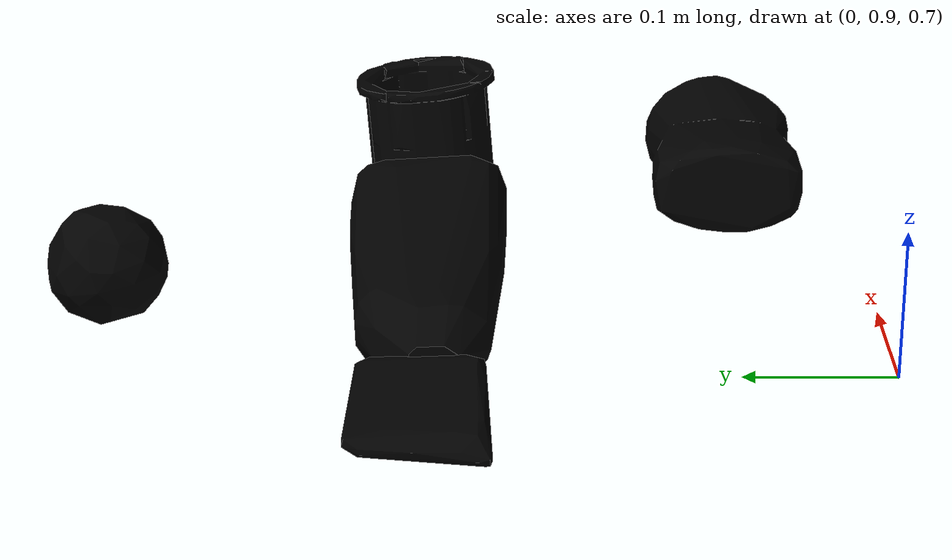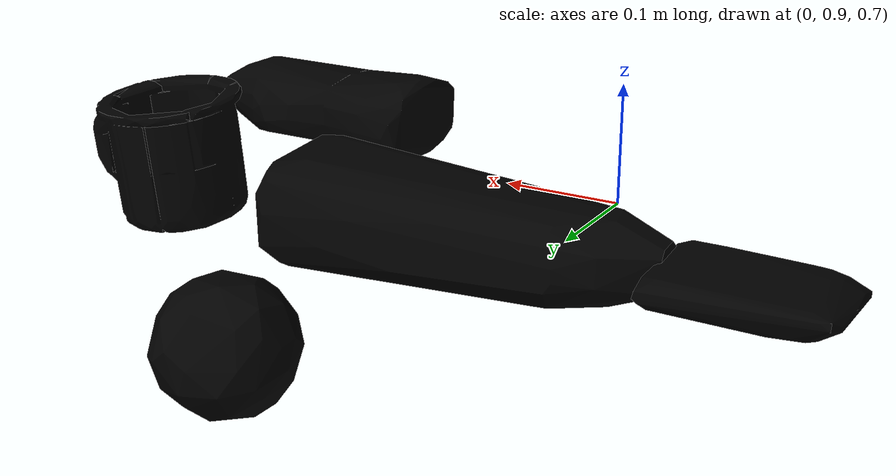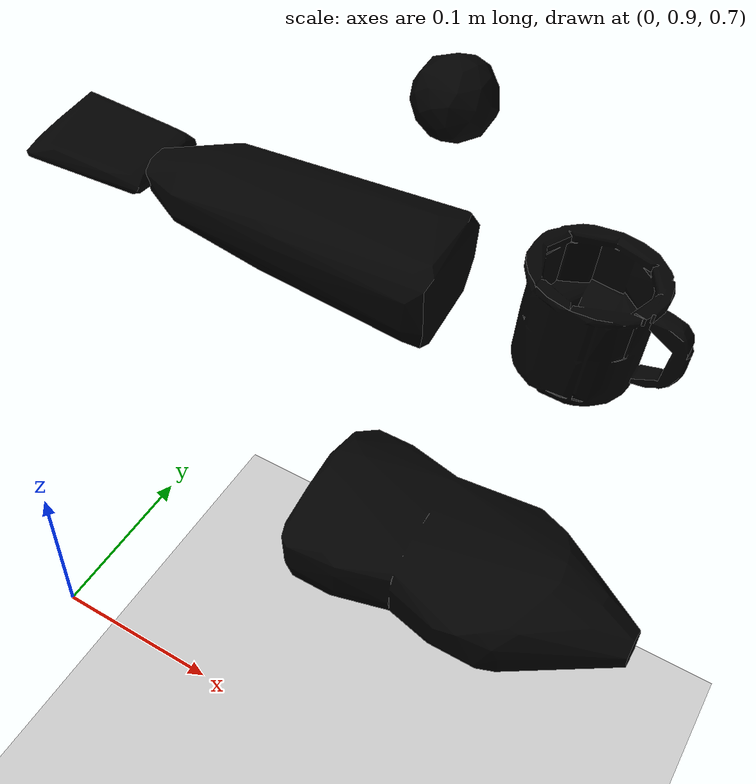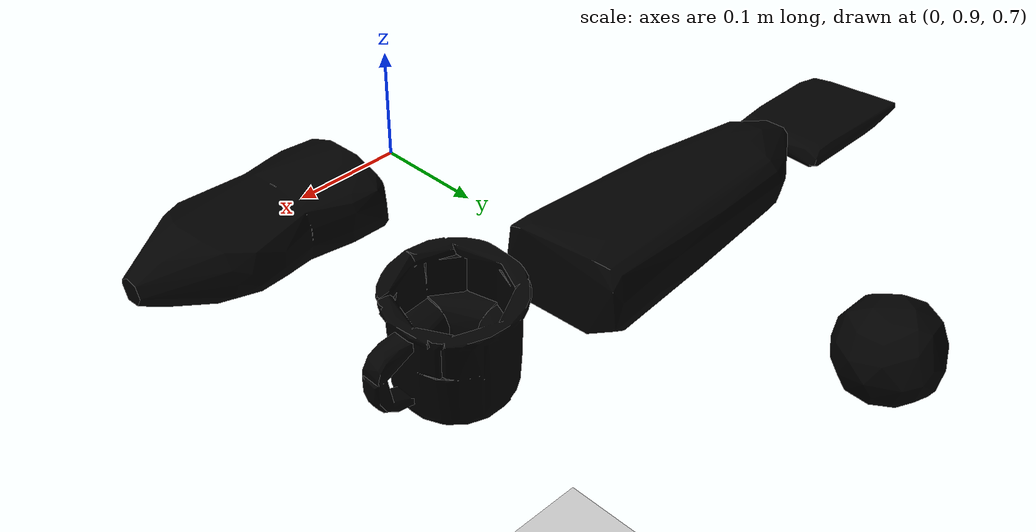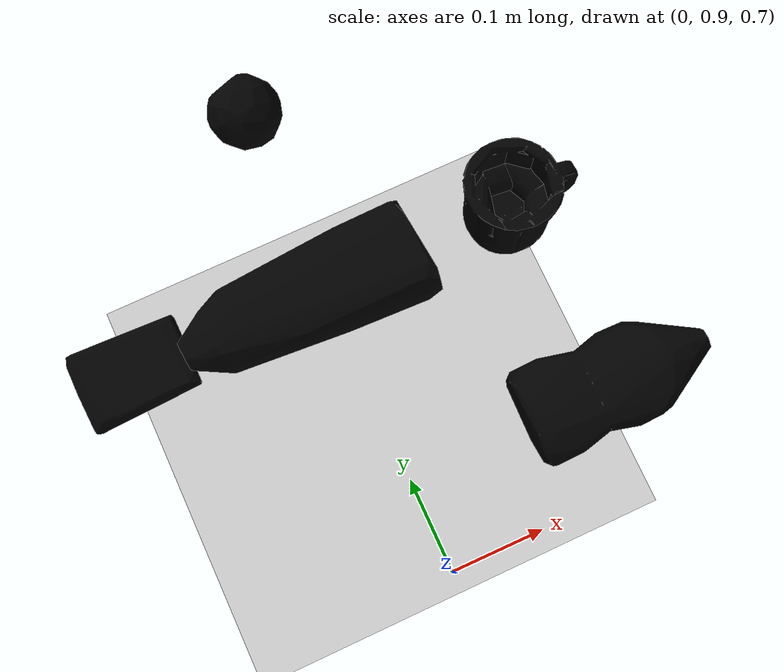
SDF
<gazebo version="1.0">
 <world name="default">
  <light name="sun" type="directional">
   <pose>0 0 10 0 -0 0</pose>
   <diffuse>0.8 0.8 0.8 1</diffuse>
   <specular>0.2 0.2 0.2 1</specular>
   <attenuation>
    <range>1000</range>
    <constant>0.9</constant>
    <linear>0.01</linear>
    <quadratic>0.001</quadratic>
   </attenuation>
   <direction>-0.5 0.1 -0.9</direction>
  </light>
  <model name="ground_plane">
   <static>1</static>
   <link name="link">
    <collision name="collision">
     <geometry><plane><normal>0 0 1</normal><size>100 100</size></plane></geometry>
     <surface><friction><ode><mu>100</mu><mu2>50</mu2></ode></friction></surface>
    </collision>
    <visual name="visual">
     <cast_shadows>0</cast_shadows>
     <geometry><plane><normal>0 0 1</normal><size>100 100</size></plane></geometry>
     <material>
      <script><uri>file://media/materials/scripts/gazebo.material</uri><name>Gazebo/Grey</name></script>
     </material>
    </visual>
    <velocity_decay><linear>0</linear><angular>0</angular></velocity_decay>
   </link>
  </model>
  <physics type="ode">
   <max_step_size>0.001</max_step_size>
   <real_time_factor>1</real_time_factor>
   <real_time_update_rate>1000</real_time_update_rate>
   <gravity>0 0 -9.8</gravity>
  </physics>
  <spherical_coordinates>
   <surface_model>EARTH_WGS84</surface_model>
   <latitude_deg>0</latitude_deg>
   <longitude_deg>0</longitude_deg>
   <elevation>0</elevation>
   <heading_deg>0</heading_deg>
  </spherical_coordinates>
  <include><uri>model://006_mustard_bottle_textured</uri><pose>0.2 1.0 0.778272 0 0 0</pose></include>
  <include><uri>model://021_bleach_cleanser_textured</uri><pose>0.0 1.2 0.778272 0 0 0</pose></include>
  <include><uri>model://025_mug_textured</uri><pose>0.2 1.2 0.778272 0 0 0</pose></include>
  <include><uri>model://026_sponge_textured</uri><pose>-0.2 1.2 0.778272 0 0 0</pose></include>
  <include><uri>model://017_orange_textured</uri><pose>0.0 1.4 0.778272 0 0 0</pose></include>
 </world>
</gazebo>

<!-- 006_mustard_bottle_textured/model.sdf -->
<sdf version="1.4">
  <model name="006_mustard_bottle_textured">
    <pose>0 0 0  0 0 0</pose>
    <link name="body">
      <inertial>
        <mass> 1.0 </mass>
        <pose>0 0 0 0 0 0</pose>
        <inertia>
          <ixx>0.0007014092721457655</ixx>
          <ixy>0.0</ixy>
          <ixz>0.0</ixz>
          <iyy>0.0023772974006212805</iyy>
          <iyz>0.0</iyz>
          <izz>0.0027281266896929538</izz>
        </inertia>
      </inertial>
      <visual name="visual">
        <geometry>
          <mesh>
            <uri>model://006_mustard_bottle_textured/textured.dae</uri>
          </mesh>
        </geometry>
        <pose>-0.07484429837772107 -0.005002967007784245 -0.02766453523030315 -1.5633073492400062 0.3999830453240471 -1.56606276659488</pose>
      </visual>
      <collision name="collision">
        <geometry>
          <mesh>
            <uri>model://006_mustard_bottle_textured/textured.col.dae</uri>
          </mesh>
        </geometry>
        <max_contacts>10</max_contacts>
        <surface>
          <friction>
            <ode>
              <mu>0.8</mu>
              <mu2>0.8</mu2>
              <slip1>0</slip1>
              <slip2>0</slip2>
            </ode>
            <torsional>
              <ode/>
            </torsional>
          </friction>
          <contact>
            <ode>
              <kp>1000000.0</kp>
              <kd>1.0</kd>
              <max_vel>0.0</max_vel>
            </ode>
          </contact>
        </surface>
        <pose>-0.07484429837772107 -0.005002967007784245 -0.02766453523030315 -1.5633073492400062 0.3999830453240471 -1.56606276659488</pose>
      </collision>
    </link>
  </model>
</sdf>

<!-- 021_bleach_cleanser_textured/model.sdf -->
<sdf version="1.4">
  <model name="021_bleach_cleanser_textured">
    <pose>0 0 0  0 0 0</pose>
    <link name="body">
      <inertial>
        <mass> 1.0 </mass>
        <pose>0 0 0 0 0 0</pose>
        <inertia>
          <ixx>0.0007870626198655923</ixx>
          <ixy>0.0</ixy>
          <ixz>0.0</ixz>
          <iyy>0.00437241781154122</iyy>
          <iyz>0.0</iyz>
          <izz>0.004696010859343187</izz>
        </inertia>
      </inertial>
      <visual name="visual">
        <geometry>
          <mesh>
            <uri>model://021_bleach_cleanser_textured/textured.dae</uri>
          </mesh>
        </geometry>
        <pose>0.0982351076681116 0.024241808195761157 0.011383814518668838 -1.5706837877611852 0.010427134539484122 1.6413280527963843</pose>
      </visual>
      <collision name="collision">
        <geometry>
          <mesh>
            <uri>model://021_bleach_cleanser_textured/textured.col.dae</uri>
          </mesh>
        </geometry>
        <max_contacts>10</max_contacts>
        <surface>
          <friction>
            <ode>
              <mu>0.8</mu>
              <mu2>0.8</mu2>
              <slip1>0</slip1>
              <slip2>0</slip2>
            </ode>
            <torsional>
              <ode/>
            </torsional>
          </friction>
          <contact>
            <ode>
              <kp>1000000.0</kp>
              <kd>1.0</kd>
              <max_vel>0.0</max_vel>
            </ode>
          </contact>
        </surface>
        <pose>0.0982351076681116 0.024241808195761157 0.011383814518668838 -1.5706837877611852 0.010427134539484122 1.6413280527963843</pose>
      </collision>
    </link>
  </model>
</sdf>

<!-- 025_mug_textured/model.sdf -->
<sdf version="1.4">
  <model name="025_mug_textured">
    <pose>0 0 0  0 0 0</pose>
    <link name="body">
      <inertial>
        <mass> 1.0 </mass>
        <pose>0 0 0 0 0 0</pose>
        <inertia>
          <ixx>0.0008600816961084043</ixx>
          <ixy>0.0</ixy>
          <ixz>0.0</ixz>
          <iyy>0.0009779168397470264</iyy>
          <iyz>0.0</iyz>
          <izz>0.0012515192631545697</izz>
        </inertia>
      </inertial>
      <visual name="visual">
        <geometry>
          <mesh>
            <uri>model://025_mug_textured/textured.dae</uri>
          </mesh>
        </geometry>
        <pose>0.017735913911651493 -0.018134349010255017 -0.026653656743845674 -0.07930745952181545 0.06392037353264089 0.029618780327461045</pose>
      </visual>
      <collision name="collision">
        <geometry>
          <mesh>
            <uri>model://025_mug_textured/textured.col.dae</uri>
          </mesh>
        </geometry>
        <max_contacts>10</max_contacts>
        <surface>
          <friction>
            <ode>
              <mu>0.8</mu>
              <mu2>0.8</mu2>
              <slip1>0</slip1>
              <slip2>0</slip2>
            </ode>
            <torsional>
              <ode/>
            </torsional>
          </friction>
          <contact>
            <ode>
              <kp>1000000.0</kp>
              <kd>1.0</kd>
              <max_vel>0.0</max_vel>
            </ode>
          </contact>
        </surface>
        <pose>0.017735913911651493 -0.018134349010255017 -0.026653656743845674 -0.07930745952181545 0.06392037353264089 0.029618780327461045</pose>
      </collision>
    </link>
  </model>
</sdf>

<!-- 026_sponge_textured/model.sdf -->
<sdf version="1.4">
  <model name="026_sponge_textured">
    <pose>0 0 0  0 0 0</pose>
    <link name="body">
      <inertial>
        <mass> 1.0 </mass>
        <pose>0 0 0 0 0 0</pose>
        <inertia>
          <ixx>0.00043545265168380655</ixx>
          <ixy>0.0</ixy>
          <ixz>0.0</ixz>
          <iyy>0.0008830518534093826</iyy>
          <iyz>0.0</iyz>
          <izz>0.0012778959680168108</izz>
        </inertia>
      </inertial>
      <visual name="visual">
        <geometry>
          <mesh>
            <uri>model://026_sponge_textured/textured.dae</uri>
          </mesh>
        </geometry>
        <pose>0.011447545298808528 -0.015819757898154468 0.009499482567303664 3.1315293921484932 -0.015433495604842784 -1.581387058420702</pose>
      </visual>
      <collision name="collision">
        <geometry>
          <mesh>
            <uri>model://026_sponge_textured/textured.col.dae</uri>
          </mesh>
        </geometry>
        <max_contacts>10</max_contacts>
        <surface>
          <friction>
            <ode>
              <mu>0.8</mu>
              <mu2>0.8</mu2>
              <slip1>0</slip1>
              <slip2>0</slip2>
            </ode>
            <torsional>
              <ode/>
            </torsional>
          </friction>
          <contact>
            <ode>
              <kp>1000000.0</kp>
              <kd>1.0</kd>
              <max_vel>0.0</max_vel>
            </ode>
          </contact>
        </surface>
        <pose>0.011447545298808528 -0.015819757898154468 0.009499482567303664 3.1315293921484932 -0.015433495604842784 -1.581387058420702</pose>
      </collision>
    </link>
  </model>
</sdf>

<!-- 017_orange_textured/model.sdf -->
<sdf version="1.4">
  <model name="017_orange_textured">
    <pose>0 0 0  0 0 0</pose>
    <link name="body">
      <inertial>
        <mass> 1.0 </mass>
        <pose>0 0 0 0 0 0</pose>
        <inertia>
          <ixx>0.0005257192352946393</ixx>
          <ixy>0.0</ixy>
          <ixz>0.0</ixz>
          <iyy>0.0005297342849243657</iyy>
          <iyz>0.0</iyz>
          <izz>0.0005410297252109953</izz>
        </inertia>
      </inertial>
      <visual name="visual">
        <geometry>
          <mesh>
            <uri>model://017_orange_textured/textured.dae</uri>
          </mesh>
        </geometry>
        <pose>0.010241225926288348 0.036517625392978856 0.009011496158512454 2.750977129534166 1.1508021082702646 1.407769143555476</pose>
      </visual>
      <collision name="collision">
        <geometry>
          <mesh>
            <uri>model://017_orange_textured/textured.col.dae</uri>
          </mesh>
        </geometry>
        <max_contacts>10</max_contacts>
        <surface>
          <friction>
            <ode>
              <mu>0.8</mu>
              <mu2>0.8</mu2>
              <slip1>0</slip1>
              <slip2>0</slip2>
            </ode>
            <torsional>
              <ode/>
            </torsional>
          </friction>
          <contact>
            <ode>
              <kp>1000000.0</kp>
              <kd>1.0</kd>
              <max_vel>0.0</max_vel>
            </ode>
          </contact>
        </surface>
        <pose>0.010241225926288348 0.036517625392978856 0.009011496158512454 2.750977129534166 1.1508021082702646 1.407769143555476</pose>
      </collision>
    </link>
  </model>
</sdf>
